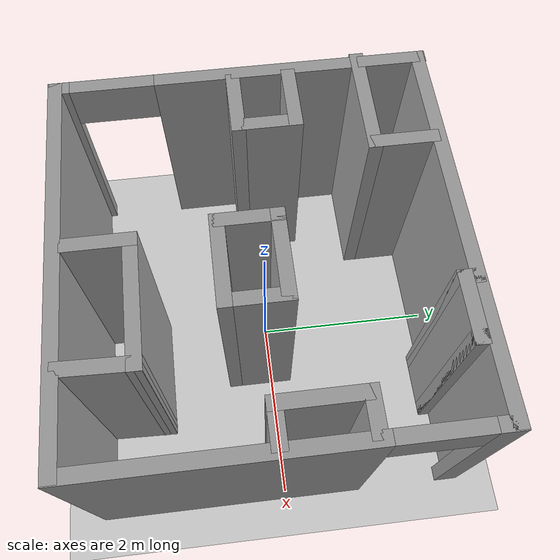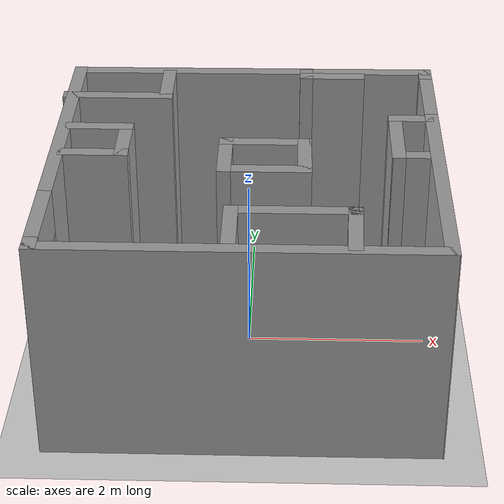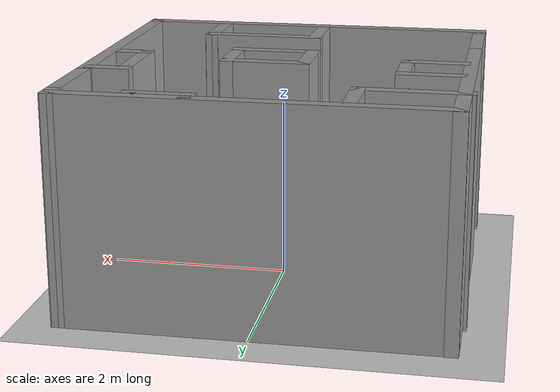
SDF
<sdf version="1.5">
 <world name="default">
  <light name="sun" type="directional">
   <pose>0 0 10 0 -0 0</pose>
   <diffuse>0.8 0.8 0.8 1</diffuse>
   <specular>0.2 0.2 0.2 1</specular>
   <attenuation>
    <range>1000</range>
    <constant>0.9</constant>
    <linear>0.01</linear>
    <quadratic>0.001</quadratic>
   </attenuation>
   <direction>-0.5 0.1 -0.9</direction>
  </light>
  <model name="ground_plane">
   <static>1</static>
   <link name="link">
    <collision name="collision">
     <geometry><plane><normal>0 0 1</normal><size>100 100</size></plane></geometry>
     <surface><friction><ode><mu>100</mu><mu2>50</mu2></ode></friction></surface>
    </collision>
    <visual name="visual">
     <cast_shadows>0</cast_shadows>
     <geometry><plane><normal>0 0 1</normal><size>100 100</size></plane></geometry>
     <material>
      <script><uri>file://media/materials/scripts/gazebo.material</uri><name>Gazebo/Grey</name></script>
     </material>
    </visual>
   </link>
  </model>
  <physics name="default_physics" default="0" type="ode">
   <max_step_size>0.001</max_step_size>
   <real_time_factor>1</real_time_factor>
   <real_time_update_rate>1000</real_time_update_rate>
   <gravity>0 0 -9.8</gravity>
   <magnetic_field>5.5645e-06 2.28758e-05 -4.23884e-05</magnetic_field>
  </physics>
  <scene><ambient>0.4 0.4 0.4 1</ambient><background>0.7 0.7 0.7 1</background><shadows>1</shadows></scene>
  <spherical_coordinates>
   <surface_model>EARTH_WGS84</surface_model>
   <latitude_deg>0</latitude_deg>
   <longitude_deg>0</longitude_deg>
   <elevation>0</elevation>
   <heading_deg>0</heading_deg>
  </spherical_coordinates>
  <model name="obstacle_room">
   <pose>-0.04 -0.034723 0 0 -0 0</pose>
   <link name="Wall_0">
    <pose>-2.01 -0.005277 0 0 0 -1.5708</pose>
    <visual name="Wall_0_Visual_0">
     <pose>-0.5575 0 1.25 0 -0 0</pose>
     <geometry><box><size>2.955 0.15 2.5</size></box></geometry>
     <material>
      <script><uri>file://media/materials/scripts/gazebo.material</uri><name>Gazebo/Grey</name></script>
      <ambient>1 1 1 1</ambient>
     </material>
    </visual>
    <collision name="Wall_0_Collision_0">
     <geometry><box><size>2.955 0.15 2.5</size></box></geometry>
     <pose>-0.5575 0 1.25 0 -0 0</pose>
    </collision>
    <visual name="Wall_0_Visual_1">
     <pose>1.9275 0 1.25 0 -0 0</pose>
     <geometry><box><size>0.215 0.15 2.5</size></box></geometry>
     <material>
      <script><uri>file://media/materials/scripts/gazebo.material</uri><name>Gazebo/Grey</name></script>
      <ambient>1 1 1 1</ambient>
     </material>
    </visual>
    <collision name="Wall_0_Collision_1">
     <geometry><box><size>0.215 0.15 2.5</size></box></geometry>
     <pose>1.9275 0 1.25 0 -0 0</pose>
    </collision>
    <visual name="Wall_0_Visual_2">
     <pose>1.37 0 2.25 0 -0 0</pose>
     <geometry><box><size>0.9 0.15 0.5</size></box></geometry>
     <material>
      <script><uri>file://media/materials/scripts/gazebo.material</uri><name>Gazebo/Grey</name></script>
      <ambient>1 1 1 1</ambient>
     </material>
    </visual>
    <collision name="Wall_0_Collision_2">
     <geometry><box><size>0.9 0.15 0.5</size></box></geometry>
     <pose>1.37 0 2.25 0 -0 0</pose>
    </collision>
   </link>
   <link name="Wall_12">
    <collision name="Wall_12_Collision">
     <geometry><box><size>0.75 0.15 2.5</size></box></geometry>
     <pose>0 0 1.25 0 -0 0</pose>
    </collision>
    <visual name="Wall_12_Visual">
     <pose>0 0 1.25 0 -0 0</pose>
     <geometry><box><size>0.75 0.15 2.5</size></box></geometry>
     <material>
      <script><uri>file://media/materials/scripts/gazebo.material</uri><name>Gazebo/Grey</name></script>
      <ambient>1 1 1 1</ambient>
     </material>
    </visual>
    <pose>-1.62 0.514723 0 0 -0 0</pose>
   </link>
   <link name="Wall_13">
    <collision name="Wall_13_Collision">
     <geometry><box><size>0.75 0.15 2.5</size></box></geometry>
     <pose>0 0 1.25 0 -0 0</pose>
    </collision>
    <visual name="Wall_13_Visual">
     <pose>0 0 1.25 0 -0 0</pose>
     <geometry><box><size>0.75 0.15 2.5</size></box></geometry>
     <material>
      <script><uri>file://media/materials/scripts/gazebo.material</uri><name>Gazebo/Grey</name></script>
      <ambient>1 1 1 1</ambient>
     </material>
    </visual>
    <pose>-1.32 0.214723 0 0 0 -1.5708</pose>
   </link>
   <link name="Wall_14">
    <collision name="Wall_14_Collision">
     <geometry><box><size>0.75 0.15 2.5</size></box></geometry>
     <pose>0 0 1.25 0 -0 0</pose>
    </collision>
    <visual name="Wall_14_Visual">
     <pose>0 0 1.25 0 -0 0</pose>
     <geometry><box><size>0.75 0.15 2.5</size></box></geometry>
     <material>
      <script><uri>file://media/materials/scripts/gazebo.material</uri><name>Gazebo/Grey</name></script>
      <ambient>1 1 1 1</ambient>
     </material>
    </visual>
    <pose>-1.62 -0.085277 0 0 -0 3.14159</pose>
   </link>
   <link name="Wall_16">
    <collision name="Wall_16_Collision">
     <geometry><box><size>1 0.15 2.5</size></box></geometry>
     <pose>0 0 1.25 0 -0 0</pose>
    </collision>
    <visual name="Wall_16_Visual">
     <pose>0 0 1.25 0 -0 0</pose>
     <geometry><box><size>1 0.15 2.5</size></box></geometry>
     <material>
      <script><uri>file://media/materials/scripts/gazebo.material</uri><name>Gazebo/Grey</name></script>
      <ambient>1 1 1 1</ambient>
     </material>
    </visual>
    <pose>0.215 0.194723 0 0 -0 0</pose>
   </link>
   <link name="Wall_17">
    <collision name="Wall_17_Collision">
     <geometry><box><size>0.75 0.15 2.5</size></box></geometry>
     <pose>0 0 1.25 0 -0 0</pose>
    </collision>
    <visual name="Wall_17_Visual">
     <pose>0 0 1.25 0 -0 0</pose>
     <geometry><box><size>0.75 0.15 2.5</size></box></geometry>
     <material>
      <script><uri>file://media/materials/scripts/gazebo.material</uri><name>Gazebo/Grey</name></script>
      <ambient>1 1 1 1</ambient>
     </material>
    </visual>
    <pose>0.64 -0.105277 0 0 0 -1.5708</pose>
   </link>
   <link name="Wall_18">
    <collision name="Wall_18_Collision">
     <geometry><box><size>1 0.15 2.5</size></box></geometry>
     <pose>0 0 1.25 0 -0 0</pose>
    </collision>
    <visual name="Wall_18_Visual">
     <pose>0 0 1.25 0 -0 0</pose>
     <geometry><box><size>1 0.15 2.5</size></box></geometry>
     <material>
      <script><uri>file://media/materials/scripts/gazebo.material</uri><name>Gazebo/Grey</name></script>
      <ambient>1 1 1 1</ambient>
     </material>
    </visual>
    <pose>0.215 -0.405277 0 0 -0 3.14159</pose>
   </link>
   <link name="Wall_19">
    <collision name="Wall_19_Collision">
     <geometry><box><size>0.75 0.15 2.5</size></box></geometry>
     <pose>0 0 1.25 0 -0 0</pose>
    </collision>
    <visual name="Wall_19_Visual">
     <pose>0 0 1.25 0 -0 0</pose>
     <geometry><box><size>0.75 0.15 2.5</size></box></geometry>
     <material>
      <script><uri>file://media/materials/scripts/gazebo.material</uri><name>Gazebo/Grey</name></script>
      <ambient>1 1 1 1</ambient>
     </material>
    </visual>
    <pose>-0.21 -0.105277 0 0 -0 1.5708</pose>
   </link>
   <link name="Wall_21">
    <collision name="Wall_21_Collision">
     <geometry><box><size>0.75 0.15 2.5</size></box></geometry>
     <pose>0 0 1.25 0 -0 0</pose>
    </collision>
    <visual name="Wall_21_Visual">
     <pose>0 0 1.25 0 -0 0</pose>
     <geometry><box><size>0.75 0.15 2.5</size></box></geometry>
     <material>
      <script><uri>file://media/materials/scripts/gazebo.material</uri><name>Gazebo/Grey</name></script>
      <ambient>1 1 1 1</ambient>
     </material>
    </visual>
    <pose>-0.95 1.58472 0 0 0 -1.5708</pose>
   </link>
   <link name="Wall_22">
    <collision name="Wall_22_Collision">
     <geometry><box><size>1.25 0.15 2.5</size></box></geometry>
     <pose>0 0 1.25 0 -0 0</pose>
    </collision>
    <visual name="Wall_22_Visual">
     <pose>0 0 1.25 0 -0 0</pose>
     <geometry><box><size>1.25 0.15 2.5</size></box></geometry>
     <material>
      <script><uri>file://media/materials/scripts/gazebo.material</uri><name>Gazebo/Grey</name></script>
      <ambient>1 1 1 1</ambient>
     </material>
    </visual>
    <pose>-1.5 1.28472 0 0 -0 3.14159</pose>
   </link>
   <link name="Wall_24">
    <collision name="Wall_24_Collision">
     <geometry><box><size>0.820298 0.15 2.5</size></box></geometry>
     <pose>0 0 1.25 0 -0 0</pose>
    </collision>
    <visual name="Wall_24_Visual">
     <pose>0 0 1.25 0 -0 0</pose>
     <geometry><box><size>0.820298 0.15 2.5</size></box></geometry>
     <material>
      <script><uri>file://media/materials/scripts/gazebo.material</uri><name>Gazebo/Grey</name></script>
      <ambient>1 1 1 1</ambient>
     </material>
    </visual>
    <pose>1.14 -1.58028 0 0 0 -1.60064</pose>
   </link>
   <link name="Wall_26">
    <collision name="Wall_26_Collision">
     <geometry><box><size>1.4 0.15 2.5</size></box></geometry>
     <pose>0 0 1.25 0 -0 0</pose>
    </collision>
    <visual name="Wall_26_Visual">
     <pose>0 0 1.25 0 -0 0</pose>
     <geometry><box><size>1.4 0.15 2.5</size></box></geometry>
     <material>
      <script><uri>file://media/materials/scripts/gazebo.material</uri><name>Gazebo/Grey</name></script>
      <ambient>1 1 1 1</ambient>
     </material>
    </visual>
    <pose>0.525 -1.24528 0 0 -0 3.14159</pose>
   </link>
   <link name="Wall_28">
    <collision name="Wall_28_Collision">
     <geometry><box><size>0.75 0.15 2.5</size></box></geometry>
     <pose>0 0 1.25 0 -0 0</pose>
    </collision>
    <visual name="Wall_28_Visual">
     <pose>0 0 1.25 0 -0 0</pose>
     <geometry><box><size>0.75 0.15 2.5</size></box></geometry>
     <material>
      <script><uri>file://media/materials/scripts/gazebo.material</uri><name>Gazebo/Grey</name></script>
      <ambient>1 1 1 1</ambient>
     </material>
    </visual>
    <pose>-0.1 -1.54528 0 0 0 -1.5708</pose>
   </link>
   <link name="Wall_3">
    <collision name="Wall_3_Collision">
     <geometry><box><size>4.2 0.15 2.5</size></box></geometry>
     <pose>0 0 1.25 0 -0 0</pose>
    </collision>
    <visual name="Wall_3_Visual">
     <pose>0 0 1.25 0 -0 0</pose>
     <geometry><box><size>4.2 0.15 2.5</size></box></geometry>
     <material>
      <script><uri>file://media/materials/scripts/gazebo.material</uri><name>Gazebo/Grey</name></script>
      <ambient>1 1 1 1</ambient>
     </material>
    </visual>
    <pose>0.015 -1.97528 0 0 -0 0</pose>
   </link>
   <link name="Wall_30">
    <collision name="Wall_30_Collision">
     <geometry><box><size>0.5 0.15 2.5</size></box></geometry>
     <pose>0 0 1.25 0 -0 0</pose>
    </collision>
    <visual name="Wall_30_Visual">
     <pose>0 0 1.25 0 -0 0</pose>
     <geometry><box><size>0.5 0.15 2.5</size></box></geometry>
     <material>
      <script><uri>file://media/materials/scripts/gazebo.material</uri><name>Gazebo/Grey</name></script>
      <ambient>1 1 1 1</ambient>
     </material>
    </visual>
    <pose>1.815 0.784723 0 0 -0 3.14159</pose>
   </link>
   <link name="Wall_31">
    <collision name="Wall_31_Collision">
     <geometry><box><size>1 0.15 2.5</size></box></geometry>
     <pose>0 0 1.25 0 -0 0</pose>
    </collision>
    <visual name="Wall_31_Visual">
     <pose>0 0 1.25 0 -0 0</pose>
     <geometry><box><size>1 0.15 2.5</size></box></geometry>
     <material>
      <script><uri>file://media/materials/scripts/gazebo.material</uri><name>Gazebo/Grey</name></script>
      <ambient>1 1 1 1</ambient>
     </material>
    </visual>
    <pose>1.64 0.359723 0 0 0 -1.5708</pose>
   </link>
   <link name="Wall_32">
    <collision name="Wall_32_Collision">
     <geometry><box><size>0.5 0.15 2.5</size></box></geometry>
     <pose>0 0 1.25 0 -0 0</pose>
    </collision>
    <visual name="Wall_32_Visual">
     <pose>0 0 1.25 0 -0 0</pose>
     <geometry><box><size>0.5 0.15 2.5</size></box></geometry>
     <material>
      <script><uri>file://media/materials/scripts/gazebo.material</uri><name>Gazebo/Grey</name></script>
      <ambient>1 1 1 1</ambient>
     </material>
    </visual>
    <pose>1.815 -0.065277 0 0 -0 0</pose>
   </link>
   <link name="Wall_34">
    <collision name="Wall_34_Collision">
     <geometry><box><size>0.25 0.15 2.5</size></box></geometry>
     <pose>0 0 1.25 0 -0 0</pose>
    </collision>
    <visual name="Wall_34_Visual">
     <pose>0 0 1.25 0 -0 0</pose>
     <geometry><box><size>0.25 0.15 2.5</size></box></geometry>
     <material>
      <script><uri>file://media/materials/scripts/gazebo.material</uri><name>Gazebo/Grey</name></script>
      <ambient>1 1 1 1</ambient>
     </material>
    </visual>
    <pose>0.66 1.89472 0 0 0 -1.5708</pose>
   </link>
   <link name="Wall_35">
    <collision name="Wall_35_Collision">
     <geometry><box><size>0.75 0.15 2.5</size></box></geometry>
     <pose>0 0 1.25 0 -0 0</pose>
    </collision>
    <visual name="Wall_35_Visual">
     <pose>0 0 1.25 0 -0 0</pose>
     <geometry><box><size>0.75 0.15 2.5</size></box></geometry>
     <material>
      <script><uri>file://media/materials/scripts/gazebo.material</uri><name>Gazebo/Grey</name></script>
      <ambient>1 1 1 1</ambient>
     </material>
    </visual>
    <pose>0.96 1.84472 0 0 -0 0</pose>
   </link>
   <link name="Wall_36">
    <collision name="Wall_36_Collision">
     <geometry><box><size>0.15 0.15 2.5</size></box></geometry>
     <pose>0 0 1.25 0 -0 0</pose>
    </collision>
    <visual name="Wall_36_Visual">
     <pose>0 0 1.25 0 -0 0</pose>
     <geometry><box><size>0.15 0.15 2.5</size></box></geometry>
     <material>
      <script><uri>file://media/materials/scripts/gazebo.material</uri><name>Gazebo/Grey</name></script>
      <ambient>1 1 1 1</ambient>
     </material>
    </visual>
    <pose>1.26 1.84472 0 0 -0 0</pose>
   </link>
   <link name="Wall_7">
    <pose>2.05 -0.000277 0 0 -0 1.5708</pose>
    <visual name="Wall_7_Visual_0">
     <pose>-0.5775 0 1.25 0 -0 0</pose>
     <geometry><box><size>2.945 0.15 2.5</size></box></geometry>
     <material>
      <script><uri>file://media/materials/scripts/gazebo.material</uri><name>Gazebo/Grey</name></script>
      <ambient>1 1 1 1</ambient>
     </material>
    </visual>
    <collision name="Wall_7_Collision_0">
     <geometry><box><size>2.945 0.15 2.5</size></box></geometry>
     <pose>-0.5775 0 1.25 0 -0 0</pose>
    </collision>
    <visual name="Wall_7_Visual_1">
     <pose>1.9225 0 1.25 0 -0 0</pose>
     <geometry><box><size>0.255 0.15 2.5</size></box></geometry>
     <material>
      <script><uri>file://media/materials/scripts/gazebo.material</uri><name>Gazebo/Grey</name></script>
      <ambient>1 1 1 1</ambient>
     </material>
    </visual>
    <collision name="Wall_7_Collision_1">
     <geometry><box><size>0.255 0.15 2.5</size></box></geometry>
     <pose>1.9225 0 1.25 0 -0 0</pose>
    </collision>
    <visual name="Wall_7_Visual_2">
     <pose>1.345 0 2.25 0 -0 0</pose>
     <geometry><box><size>0.9 0.15 0.5</size></box></geometry>
     <material>
      <script><uri>file://media/materials/scripts/gazebo.material</uri><name>Gazebo/Grey</name></script>
      <ambient>1 1 1 1</ambient>
     </material>
    </visual>
    <collision name="Wall_7_Collision_2">
     <geometry><box><size>0.9 0.15 0.5</size></box></geometry>
     <pose>1.345 0 2.25 0 -0 0</pose>
    </collision>
   </link>
   <link name="Wall_9">
    <collision name="Wall_9_Collision">
     <geometry><box><size>4.20011 0.15 2.5</size></box></geometry>
     <pose>0 0 1.25 0 -0 0</pose>
    </collision>
    <visual name="Wall_9_Visual">
     <pose>0 0 1.25 0 -0 0</pose>
     <geometry><box><size>4.20011 0.15 2.5</size></box></geometry>
     <material>
      <script><uri>file://media/materials/scripts/gazebo.material</uri><name>Gazebo/Grey</name></script>
      <ambient>1 1 1 1</ambient>
     </material>
    </visual>
    <pose>0.015 1.95972 0 0 -0 0.007407</pose>
   </link>
   <static>1</static>
  </model>
 </world>
</sdf>
